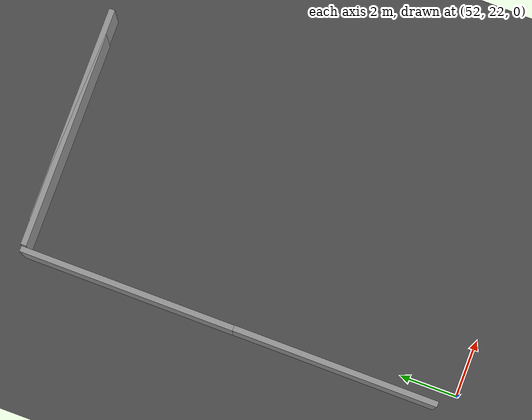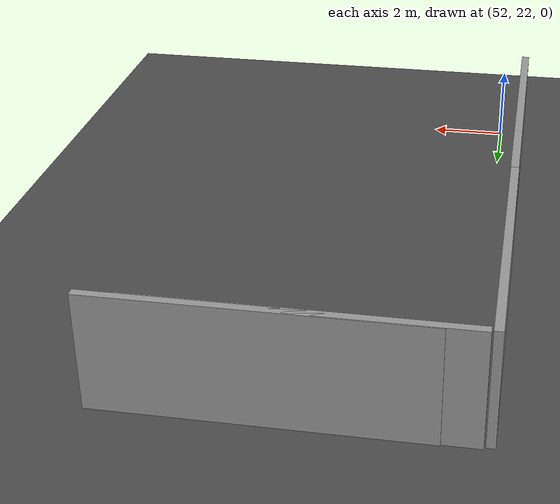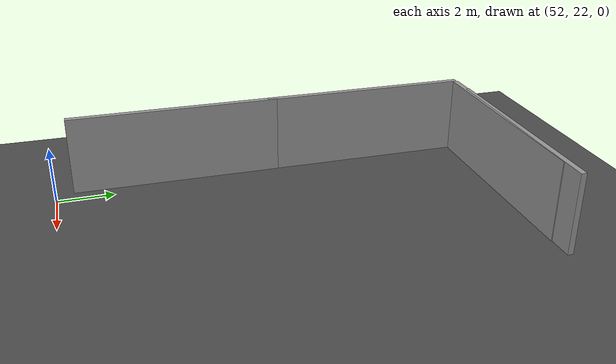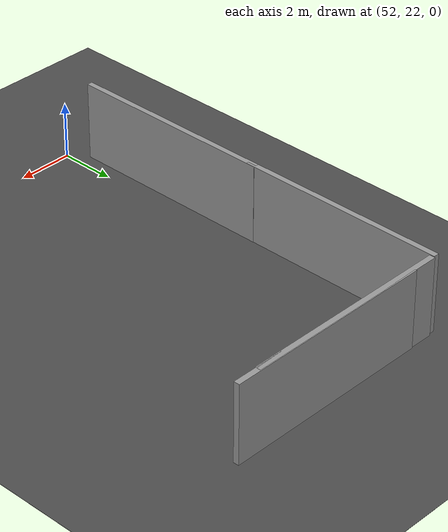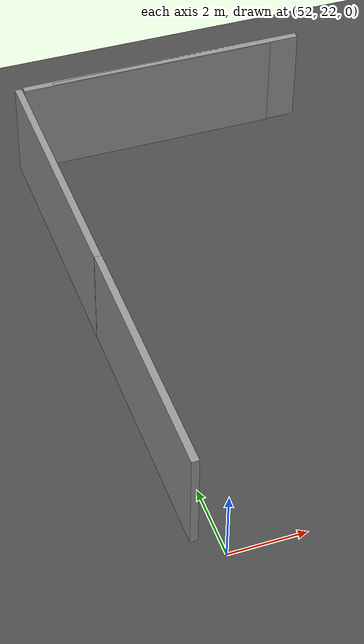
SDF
<sdf version="1.6">
 <world name="default">
  <model name="asphalt_plane">
   <static>1</static>
   <pose>1.29754 -0.433466 -0.02 0 -0 0</pose>
   <link name="link">
    <collision name="collision"><geometry><box><size>300 200 0.01</size></box></geometry></collision>
    <visual name="visual">
     <cast_shadows>0</cast_shadows>
     <geometry><box><size>300 200 0.01</size></box></geometry>
     <material>
      <script>
       <uri>model://asphalt_plane/materials/scripts</uri>
       <uri>model://asphalt_plane/materials/textures</uri>
       <name>vrc/asphalt</name>
      </script>
     </material>
    </visual>
   </link>
  </model>
  <model name="grey_wall">
   <static>1</static>
   <link name="link">
    <pose>0 0 1.4 0 -0 0</pose>
    <collision name="collision"><geometry><box><size>7.5 0.2 2.8</size></box></geometry></collision>
    <visual name="visual">
     <cast_shadows>0</cast_shadows>
     <geometry><box><size>7.5 0.2 2.8</size></box></geometry>
     <material>
      <script>
       <uri>model://grey_wall/materials/scripts</uri>
       <uri>model://grey_wall/materials/textures</uri>
       <name>vrc/grey_wall</name>
      </script>
     </material>
    </visual>
   </link>
   <pose>55.3006 37.2299 0 0 -0 0</pose>
  </model>
  <model name="grey_wall_clone">
   <static>1</static>
   <link name="link">
    <pose>0 0 1.4 0 -0 0</pose>
    <collision name="collision"><geometry><box><size>7.5 0.2 2.8</size></box></geometry></collision>
    <visual name="visual">
     <cast_shadows>0</cast_shadows>
     <geometry><box><size>7.5 0.2 2.8</size></box></geometry>
     <material>
      <script>
       <uri>model://grey_wall/materials/scripts</uri>
       <uri>model://grey_wall/materials/textures</uri>
       <name>vrc/grey_wall</name>
      </script>
     </material>
    </visual>
   </link>
   <pose>51.4113 33.527 0 0 -0 1.57</pose>
  </model>
  <model name="grey_wall_clone_0">
   <static>1</static>
   <link name="link">
    <pose>0 0 1.4 0 -0 0</pose>
    <collision name="collision"><geometry><box><size>7.5 0.2 2.8</size></box></geometry></collision>
    <visual name="visual">
     <cast_shadows>0</cast_shadows>
     <geometry><box><size>7.5 0.2 2.8</size></box></geometry>
     <material>
      <script>
       <uri>model://grey_wall/materials/scripts</uri>
       <uri>model://grey_wall/materials/textures</uri>
       <name>vrc/grey_wall</name>
      </script>
     </material>
    </visual>
   </link>
   <pose>56.1672 37.2585 0 0 -0 0</pose>
  </model>
  <model name="grey_wall_clone_clone">
   <static>1</static>
   <link name="link">
    <pose>0 0 1.4 0 -0 0</pose>
    <collision name="collision"><geometry><box><size>7.5 0.2 2.8</size></box></geometry></collision>
    <visual name="visual">
     <cast_shadows>0</cast_shadows>
     <geometry><box><size>7.5 0.2 2.8</size></box></geometry>
     <material>
      <script>
       <uri>model://grey_wall/materials/scripts</uri>
       <uri>model://grey_wall/materials/textures</uri>
       <name>vrc/grey_wall</name>
      </script>
     </material>
    </visual>
   </link>
   <pose>51.4118 26.3529 0 0 -0 1.57</pose>
  </model>
 </world>
</sdf>
